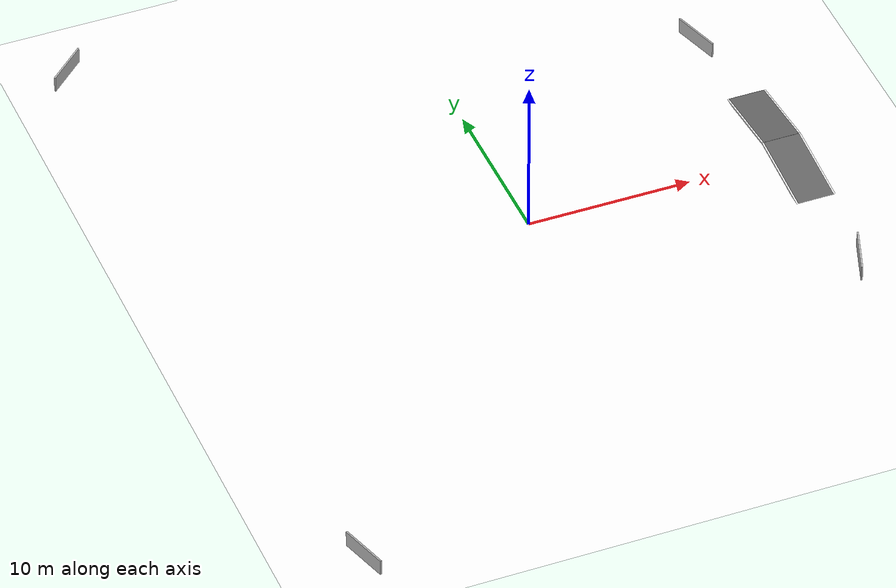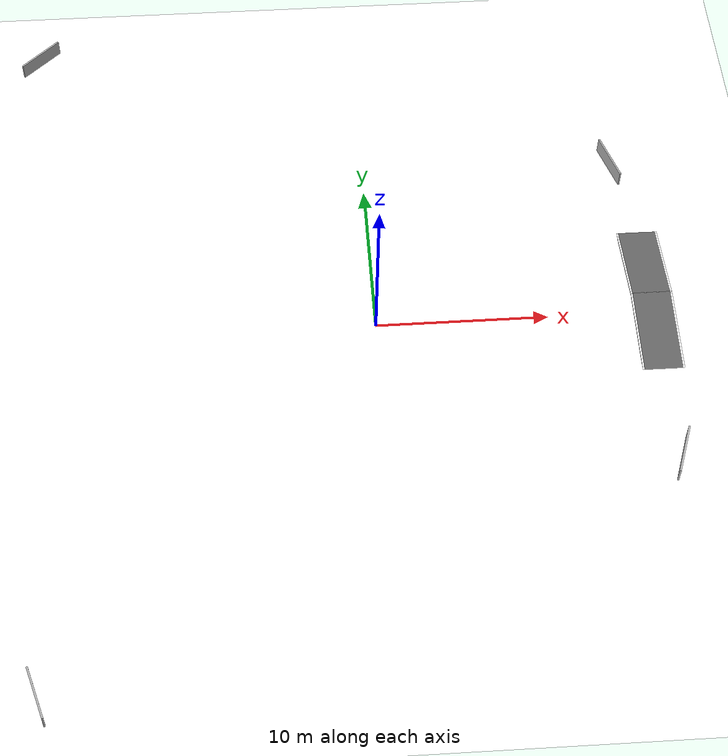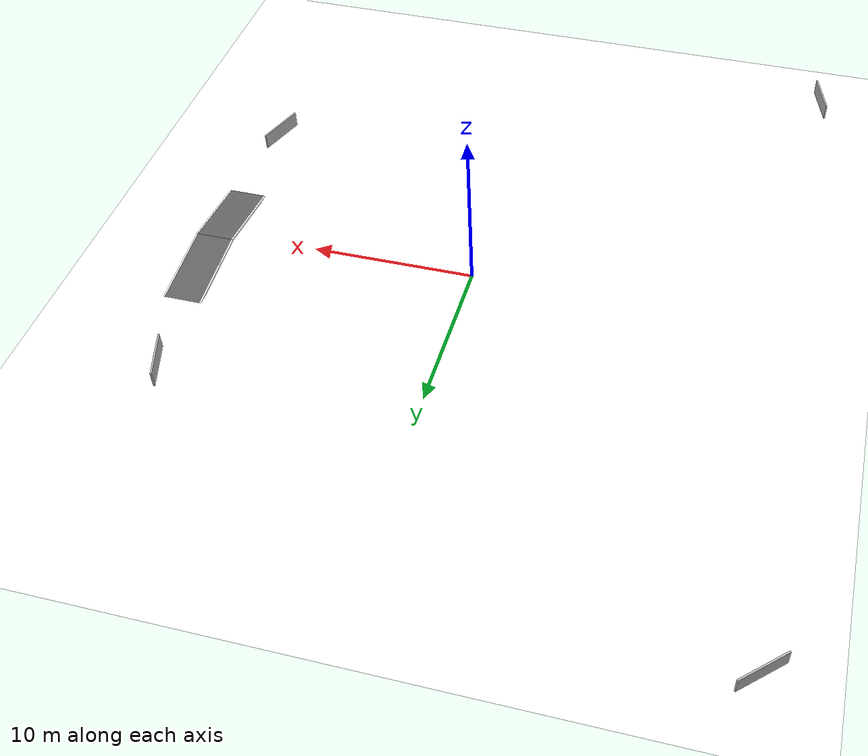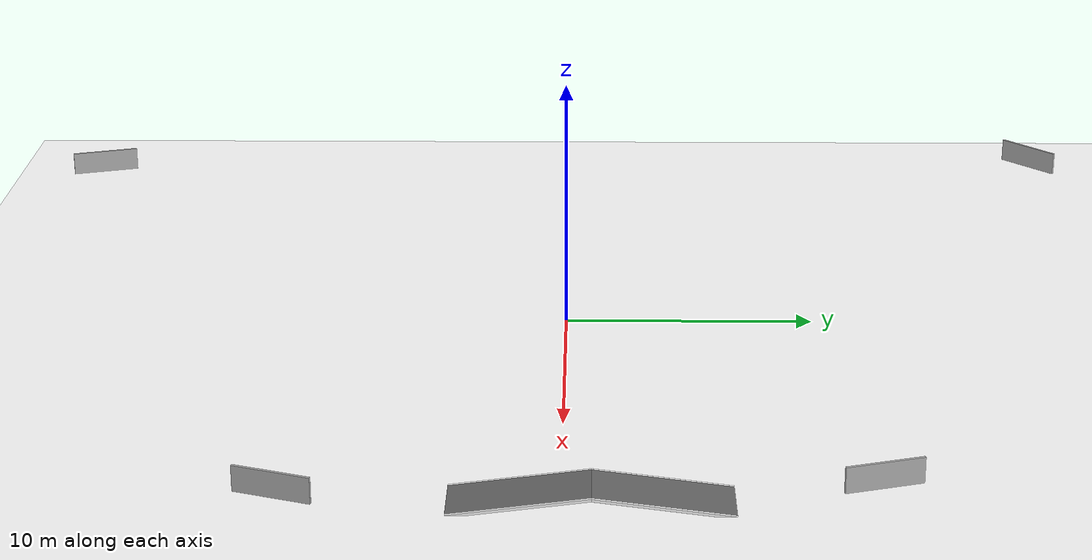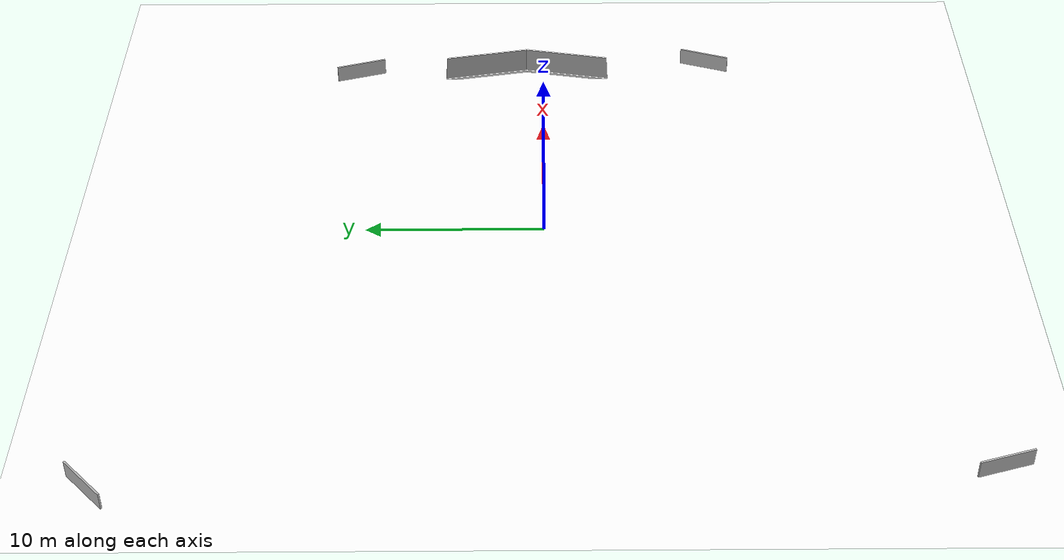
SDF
<sdf version="1.7">
 <world name="default">
  <physics name="1ms" type="ignored">
   <max_step_size>0.004</max_step_size>
   <real_time_factor>1.0</real_time_factor>
   <real_time_update_rate>250</real_time_update_rate>
  </physics>
  <scene><ambient>1 1 1 1</ambient><background>0.7 0.7 0.7 1</background><shadows>0</shadows></scene>
  <plugin filename="ignition-gazebo-physics-system" name="ignition::gazebo::systems::Physics"/>
  <plugin filename="ignition-gazebo-user-commands-system" name="ignition::gazebo::systems::UserCommands"/>
  <plugin filename="ignition-gazebo-scene-broadcaster-system" name="ignition::gazebo::systems::SceneBroadcaster"/>
  <light name="sun" type="directional">
   <cast_shadows>0</cast_shadows>
   <pose>0 0 10 0 -0 0</pose>
   <diffuse>1 1 1 1</diffuse>
   <specular>0.2 0.2 0.2 1</specular>
   <attenuation>
    <range>1000</range>
    <constant>0.9</constant>
    <linear>0.01</linear>
    <quadratic>0.001</quadratic>
   </attenuation>
   <direction>-0.5 0.1 -0.9</direction>
  </light>
  <model name="igvc_basic_ground">
   <static>true</static>
   <link name="link">
    <collision name="collision">
     <geometry><plane><normal>0 0 1</normal><size>47.512 52.864</size></plane></geometry>
     <surface><friction><ode><mu>100</mu><mu2>50</mu2></ode></friction></surface>
    </collision>
    <visual name="visual">
     <cast_shadows>false</cast_shadows>
     <geometry><plane><normal>0 0 1</normal><size>47.512 52.864</size></plane></geometry>
     <material>
      <ambient>1 1 1 1</ambient>
      <diffuse>1 1 1 1</diffuse>
      <specular>0 0 0 1</specular>
      <pbr><metal><albedo_map>IGVC_pavement.png</albedo_map><roughness>0.9</roughness></metal></pbr>
     </material>
    </visual>
   </link>
  </model>
  <spherical_coordinates>
   <surface_model>EARTH_WGS84</surface_model>
   <latitude_deg>0</latitude_deg>
   <longitude_deg>0</longitude_deg>
   <elevation>0</elevation>
   <heading_deg>0</heading_deg>
  </spherical_coordinates>
  <model name="barricade_1">
   <static>1</static>
   <pose>15.2038 11.26 0.5 0 0 1.8687</pose>
   <link name="link">
    <collision name="collision"><geometry><box><size>3 0.1 1</size></box></geometry></collision>
    <visual name="visual"><geometry><box><size>3 0.1 1</size></box></geometry></visual>
   </link>
  </model>
  <model name="barricade_2">
   <static>1</static>
   <pose>16.1541 -10.0442 0.5 0 0 1.2346</pose>
   <link name="link">
    <collision name="collision"><geometry><box><size>3 0.1 1</size></box></geometry></collision>
    <visual name="visual"><geometry><box><size>3 0.1 1</size></box></geometry></visual>
   </link>
  </model>
  <model name="barricade_3">
   <static>1</static>
   <pose>-18.8148 -22.3826 0.5 0 0 1.8687</pose>
   <link name="link">
    <collision name="collision"><geometry><box><size>3 0.1 1</size></box></geometry></collision>
    <visual name="visual"><geometry><box><size>3 0.1 1</size></box></geometry></visual>
   </link>
  </model>
  <model name="barricade_4">
   <static>1</static>
   <pose>-19.955 22.2029 0.5 0 0 0.753</pose>
   <link name="link">
    <collision name="collision"><geometry><box><size>3 0.1 1</size></box></geometry></collision>
    <visual name="visual"><geometry><box><size>3 0.1 1</size></box></geometry></visual>
   </link>
  </model>
  <model name="ramp_up">
   <static>1</static>
   <pose>16.1541 -1.945 0.15 0.1265 0 0</pose>
   <link name="link">
    <collision name="collision">
     <geometry><box><size>2.214 6 0.1</size></box></geometry>
     <surface>
      <friction><ode><mu>100</mu><mu2>50</mu2><slip1>0.0</slip1><slip2>0.0</slip2></ode></friction>
     </surface>
    </collision>
    <visual name="visual">
     <geometry><box><size>2.214 6 0.1</size></box></geometry>
     <material><ambient>0.4 0.7 0.6 1</ambient><diffuse>0.4 0.4 0.4 1</diffuse></material>
    </visual>
   </link>
  </model>
  <model name="ramp_down">
   <static>1</static>
   <pose>16.1541 3.975 0.15 0.1265 0 3.14</pose>
   <link name="link">
    <collision name="collision">
     <geometry><box><size>2.214 6 0.1</size></box></geometry>
     <surface>
      <friction><ode><mu>100</mu><mu2>50</mu2><slip1>0.0</slip1><slip2>0.0</slip2></ode></friction>
     </surface>
    </collision>
    <visual name="visual">
     <geometry><box><size>2.214 6 0.1</size></box></geometry>
     <material><ambient>0.4 0.7 0.6 1</ambient><diffuse>0.4 0.4 0.4 1</diffuse></material>
    </visual>
   </link>
  </model>
  <model name="ramp_up_lane_line_left">
   <static>1</static>
   <pose>17.3111 -1.945 0.15 0.1265 0 0</pose>
   <link name="link">
    <inertial><mass>0.1</mass><inertia><ixx>0.0001</ixx><iyy>0.0001</iyy><izz>0.0001</izz></inertia></inertial>
    <collision name="collision">
     <geometry><box><size>0.1 6 0.1</size></box></geometry>
     <surface><friction><ode><mu>0.1</mu><mu2>0.1</mu2></ode></friction></surface>
    </collision>
    <visual name="visual">
     <geometry><box><size>0.1 6 0.1</size></box></geometry>
     <material><ambient>1 1 1 1</ambient><diffuse>1 1 1 1</diffuse></material>
    </visual>
   </link>
  </model>
  <model name="ramp_up_lane_line_right">
   <static>1</static>
   <pose>14.9971 -1.945 0.15 0.1265 0 0</pose>
   <link name="link">
    <inertial><mass>0.1</mass><inertia><ixx>0.0001</ixx><iyy>0.0001</iyy><izz>0.0001</izz></inertia></inertial>
    <collision name="collision">
     <geometry><box><size>0.1 6 0.1</size></box></geometry>
     <surface><friction><ode><mu>0.1</mu><mu2>0.1</mu2></ode></friction></surface>
    </collision>
    <visual name="visual">
     <geometry><box><size>0.1 6 0.1</size></box></geometry>
     <material><ambient>1 1 1 1</ambient><diffuse>1 1 1 1</diffuse></material>
    </visual>
   </link>
  </model>
  <model name="ramp_down_lane_line_left">
   <static>1</static>
   <pose>17.3111 3.975 0.15 0.1265 0 3.14</pose>
   <link name="link">
    <inertial><mass>0.1</mass><inertia><ixx>0.0001</ixx><iyy>0.0001</iyy><izz>0.0001</izz></inertia></inertial>
    <collision name="collision">
     <geometry><box><size>0.1 6 0.1</size></box></geometry>
     <surface><friction><ode><mu>0.1</mu><mu2>0.1</mu2></ode></friction></surface>
    </collision>
    <visual name="visual">
     <geometry><box><size>0.1 6 0.1</size></box></geometry>
     <material><ambient>1 1 1 1</ambient><diffuse>1 1 1 1</diffuse></material>
    </visual>
   </link>
  </model>
  <model name="ramp_down_lane_line_right">
   <static>1</static>
   <pose>14.9971 3.975 0.15 0.1265 0 3.14</pose>
   <link name="link">
    <inertial><mass>0.1</mass><inertia><ixx>0.0001</ixx><iyy>0.0001</iyy><izz>0.0001</izz></inertia></inertial>
    <collision name="collision">
     <geometry><box><size>0.1 6 0.1</size></box></geometry>
     <surface><friction><ode><mu>0.1</mu><mu2>0.1</mu2></ode></friction></surface>
    </collision>
    <visual name="visual">
     <geometry><box><size>0.1 6 0.1</size></box></geometry>
     <material><ambient>1 1 1 1</ambient><diffuse>1 1 1 1</diffuse></material>
    </visual>
   </link>
  </model>
 </world>
</sdf>
